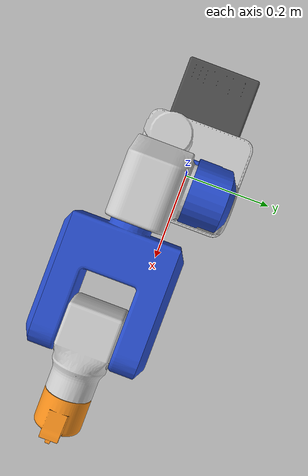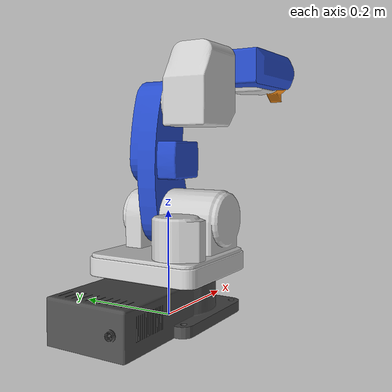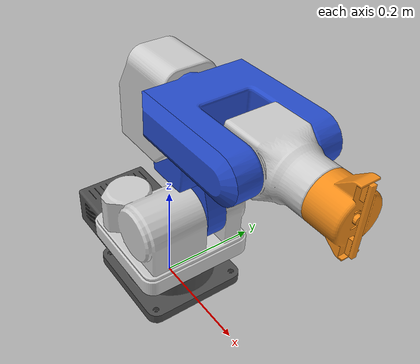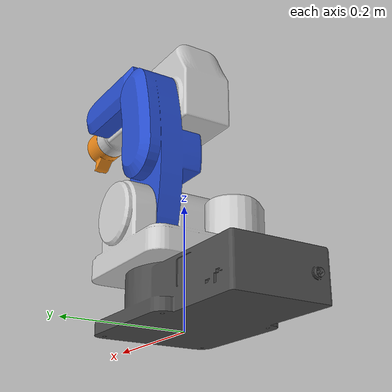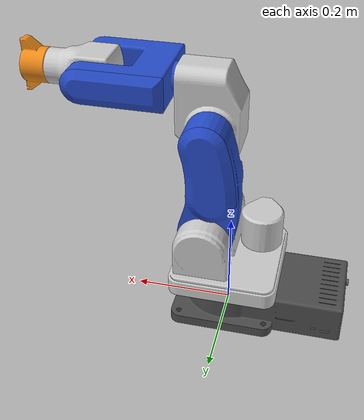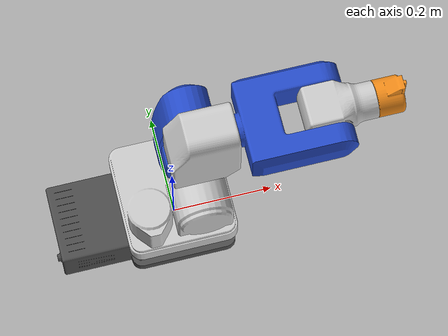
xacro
<?xml version="1.0"?>
<robot xmlns:xacro="http://www.ros.org/wiki/xacro">

  <!-- Макрос для временной инерции.
       Позже эти значения нужно заменить на реальные из SolidWorks. -->
  <xacro:macro name="default_inertial" params="mass">
    <inertial>
      <origin xyz="0 0 0" rpy="0 0 0"/>
      <mass value="${mass}"/>
      <inertia
        ixx="0.01" ixy="0.0" ixz="0.0"
        iyy="0.01" iyz="0.0"
        izz="0.01"/>
    </inertial>
  </xacro:macro>

  <!--
    Макрос звена.

    visual = STL, чтобы робот выглядел как твоя CAD-модель.
    collision = простая геометрия, чтобы Gazebo/MoveIt не зависали на тяжёлых STL.
  -->
  <xacro:macro name="robot_link" params="
    name
    visual_mesh
    material
    mass
    collision_type
    collision_xyz
    collision_rpy
    collision_size:=''
    collision_radius:='0'
    collision_length:='0'
  ">
    <link name="${name}">

      <!-- Визуальная модель: оставляем STL -->
      <visual>
        <origin xyz="0 0 0" rpy="0 0 0"/>
        <geometry>
          <mesh
            filename="package://robot_description/meshes/visual/${visual_mesh}"
            scale="0.001 0.001 0.001"/>
        </geometry>
        <material name="${material}"/>
      </visual>

      <!-- Упрощённая collision-модель -->
      <collision>
        <origin xyz="${collision_xyz}" rpy="${collision_rpy}"/>
        <geometry>
          <xacro:if value="${collision_type == 'box'}">
            <box size="${collision_size}"/>
          </xacro:if>

          <xacro:if value="${collision_type == 'cylinder'}">
            <cylinder radius="${collision_radius}" length="${collision_length}"/>
          </xacro:if>
        </geometry>
      </collision>

      <xacro:default_inertial mass="${mass}"/>

    </link>
  </xacro:macro>

  <!-- ===================== LINKS ===================== -->

  <link name="world"/>

  <joint name="world_to_base_fixed" type="fixed">
    <parent link="world"/>
    <child link="base_link"/>
    <origin xyz="0 0 0" rpy="0 0 0"/>
  </joint>

  <xacro:robot_link
    name="base_link"
    visual_mesh="base.STL"
    material="dark_gray"
    mass="2.0"
    collision_type="box"
    collision_xyz="0 0 0.035"
    collision_rpy="0 0 0"
    collision_size="0.16 0.16 0.07"/>

  <xacro:robot_link
    name="link_1"
    visual_mesh="joint_2.STL"
    material="light_gray"
    mass="1.0"
    collision_type="cylinder"
    collision_xyz="0 0 0.04"
    collision_rpy="0 0 0"
    collision_radius="0.05"
    collision_length="0.08"/>

  <xacro:robot_link
    name="link_2"
    visual_mesh="joint_3.STL"
    material="blue"
    mass="1.0"
    collision_type="cylinder"
    collision_xyz="0 0.11 0"
    collision_rpy="1.5708 0 0"
    collision_radius="0.035"
    collision_length="0.22"/>

  <xacro:robot_link
    name="link_3"
    visual_mesh="joint_4.STL"
    material="light_gray"
    mass="1.0"
    collision_type="box"
    collision_xyz="0.035 0.04 0"
    collision_rpy="0 0 0"
    collision_size="0.16 0.08 0.08"/>

  <xacro:robot_link
    name="link_4"
    visual_mesh="joint_5.STL"
    material="blue"
    mass="0.8"
    collision_type="cylinder"
    collision_xyz="0 0 0.086"
    collision_rpy="0 0 0"
    collision_radius="0.03"
    collision_length="0.172"/>

  <xacro:robot_link
    name="link_5"
    visual_mesh="joint_6.STL"
    material="light_gray"
    mass="0.8"
    collision_type="cylinder"
    collision_xyz="0 0.043 0"
    collision_rpy="1.5708 0 0"
    collision_radius="0.025"
    collision_length="0.086"/>

  <!-- gripper_base выполняет финальное вращение, поэтому это link_6 -->
  <xacro:robot_link
    name="link_6"
    visual_mesh="gripper_base.STL"
    material="orange"
    mass="0.5"
    collision_type="cylinder"
    collision_xyz="0 0 0.043"
    collision_rpy="0 0 0"
    collision_radius="0.035"
    collision_length="0.0867"/>

  <!-- Технический фрейм инструмента -->
  <link name="tool0"/>

  <!-- ===================== JOINTS ===================== -->

  <joint name="joint_1" type="revolute">
    <parent link="base_link"/>
    <child link="link_1"/>
    <origin xyz="0 0 0.1038" rpy="0 0 3.1416"/>
    <axis xyz="0 0 1"/>
    <limit lower="-3.14" upper="3.14" effort="30" velocity="1.0"/>
    <dynamics damping="0.0" friction="0.0"/>
  </joint>

  <joint name="joint_2" type="revolute">
    <parent link="link_1"/>
    <child link="link_2"/>
    <origin xyz="-0.04375 -0.0558 0.08" rpy="1.5708 0 0"/>
    <axis xyz="0 0 1"/>
    <limit lower="-0.7854" upper="1.5708" effort="30" velocity="1.0"/>
    <dynamics damping="0.0" friction="0.0"/>
  </joint>

  <joint name="joint_3" type="revolute">
    <parent link="link_2"/>
    <child link="link_3"/>
    <origin xyz="0 0.22 -0.04" rpy="0 3.1416 0"/>
    <axis xyz="0 0 1"/>
    <limit lower="-1.5708" upper="1.5708" effort="30" velocity="1.0"/>
    <dynamics damping="0.0" friction="0.0"/>
  </joint>

  <joint name="joint_4" type="revolute">
    <parent link="link_3"/>
    <child link="link_4"/>
    <origin xyz="0.07 0.075 0.06" rpy="0 1.5708 0"/>
    <axis xyz="0 0 1"/>
    <limit lower="-3.1416" upper="3.1416" effort="20" velocity="1.0"/>
    <dynamics damping="0.0" friction="0.0"/>
  </joint>

  <joint name="joint_5" type="revolute">
    <parent link="link_4"/>
    <child link="link_5"/>
    <origin xyz="0 0 0.172" rpy="1.5708 0 -1.5708"/>
    <axis xyz="0 0 1"/>
    <limit lower="-2.0944" upper="2.0944" effort="10" velocity="1.0"/>
    <dynamics damping="0.0" friction="0.0"/>
  </joint>

  <joint name="joint_6" type="revolute">
    <parent link="link_5"/>
    <child link="link_6"/>
    <origin xyz="0 0.08593 0" rpy="-1.5708 0 0"/>
    <axis xyz="0 0 1"/>
    <limit lower="-3.14" upper="3.14" effort="30" velocity="1.0"/>
    <dynamics damping="0.0" friction="0.0"/>
  </joint>

  <joint name="tool0_fixed_joint" type="fixed">
    <parent link="link_6"/>
    <child link="tool0"/>

    <!-- gripper_base.STL -> tool0: X=0 mm, Y=0 mm, Z=86.7 mm -->
    <origin xyz="0 0 0.0867" rpy="0 0 0"/>
  </joint>

</robot>
